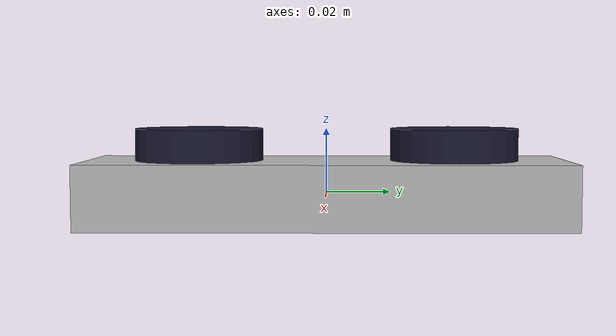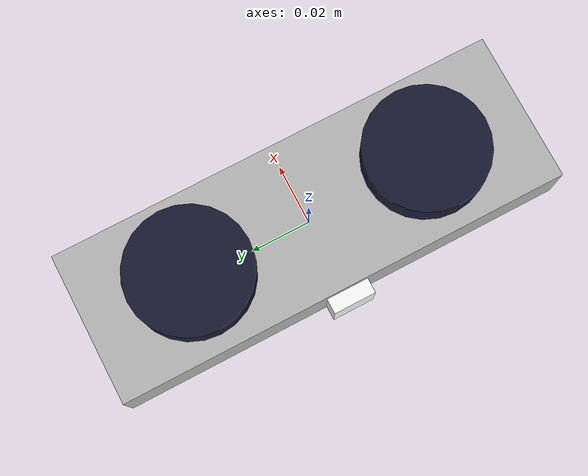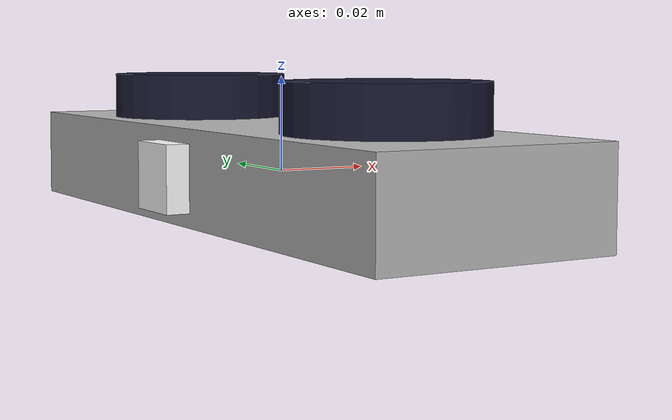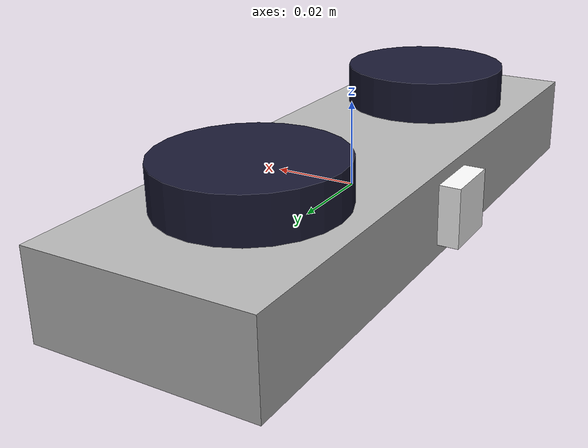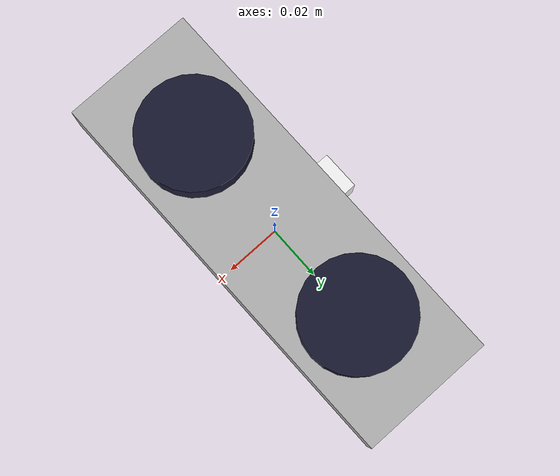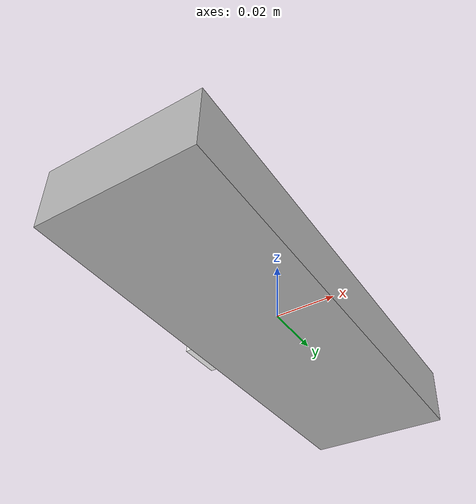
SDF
<?xml version="1.0" ?>
    <sdf version="1.5">
        <model name="camera">

            <link name="Main">
                <pose>0 0 0 0 -1.570796327 0</pose>
                <inertial>
                    <mass>0.7</mass>
                    <inertia>
                        <ixx>0.7</ixx>
                        <iyy>0.7</iyy>
                        <izz>0.7</izz>
                    </inertia>
                </inertial>
                <collision name="collision">
                <geometry>
                    <box>
                    <size>0.02 0.15 0.05</size>
                    </box>
                </geometry>
                </collision>
                <visual name="visual">
                <geometry>
                    <box>
                    <size>0.02 0.15 0.05</size>
                    </box>
                </geometry>
                </visual>

                <sensor name="camera_left" type="camera">
                <topic>cam_left</topic>
                <pose>0 0.04 0 0 0 0</pose>
                <camera>
                    <box_type>full_2d</box_type>
                    <horizontal_fov>1.047</horizontal_fov>
                    <image>
                    <width>800</width>
                    <height>600</height>
                    </image>
                    <clip>
                    <near>0.1</near>
                    <far>10</far>
                    </clip>
                    <save enabled="true">
                    <path>../tmp_files/camera_left</path>
                    </save>
                    <noise>
                    <type>gaussian</type>
                    <mean>0.00</mean>
                    <stddev>0.0</stddev>
                    </noise>
                    <distortion>
                    <k1>1</k1>
                    <k2>10</k2>
                    <k3>5</k3>
                    <p1>10</p1>
                    <p2>10</p2>
                    <center>0.5 0.5</center>
                    </distortion>
                    <lens>
                    <type>stereographic</type>
                    <scale_to_hfov>true</scale_to_hfov>
                    <cutoff_angle>1.5707963267948966</cutoff_angle>
                    <env_texture_size>256</env_texture_size>
                    </lens>
                </camera>
                <always_on>1</always_on>
                <update_rate>24</update_rate>
                <visualize>true</visualize>

                <plugin
                    filename="gz-sim-camera-video-recorder-system"
                    name="gz::sim::systems::CameraVideoRecorder">
                    <service>cam_basic</service>
                    <use_sim_time>true</use_sim_time>
                    <fps>24</fps>
                </plugin>

                </sensor>

                <sensor name="camera_right" type="camera">
                <topic>cam_right</topic>
                <pose>0 -0.04 0 0 0 0</pose>
                <camera>
                    <box_type>full_2d</box_type>
                    <horizontal_fov>1.047</horizontal_fov>
                    <image>
                    <width>800</width>
                    <height>600</height>
                    </image>
                    <clip>
                    <near>0.1</near>
                    <far>10</far>
                    </clip>
                    <save enabled="true">
                    <path>../tmp_files/stereo_cam_right</path>
                    </save>
                    <noise>
                    <type>gaussian</type>
                    <mean>0.00</mean>
                    <stddev>0.0</stddev>
                    </noise>
                    <distortion>
                    <k1>1</k1>
                    <k2>10</k2>
                    <k3>5</k3>
                    <p1>10</p1>
                    <p2>10</p2>
                    <center>0.5 0.5</center>
                    </distortion>
                    <lens>
                    <type>stereographic</type>
                    <scale_to_hfov>true</scale_to_hfov>
                    <cutoff_angle>1.5707963267948966</cutoff_angle>
                    <env_texture_size>256</env_texture_size>
                    </lens>
                </camera>
                <always_on>1</always_on>
                <update_rate>24</update_rate>
                <visualize>true</visualize>

                <plugin
                    filename="gz-sim-camera-video-recorder-system"
                    name="gz::sim::systems::CameraVideoRecorder">
                    <service>cam_basic</service>
                    <use_sim_time>true</use_sim_time>
                    <fps>24</fps>
                </plugin>

                </sensor>

            </link>

            <link name="Left_Lens">

                <!-- Vertically offset the top cylinder by the length of the bottom
                    cylinder and half the length of this cylinder. -->
                <pose>0 0.04 0.015 0 0 0</pose>

                <inertial>
                    <mass>0.1</mass>
                    <pose>0 -0.04 -0.015 0 0 0</pose>
                    <inertia>
                        <ixx>0.1</ixx>
                        <iyy>0.1</iyy>
                        <izz>0.1</izz>
                    </inertia>
                </inertial>

                <collision name="top_collision">
                <geometry>
                    <cylinder>
                    <!-- Radius and length provided by Velodyne -->
                    <radius>0.02</radius>
                    <length>0.01</length>
                    </cylinder>
                </geometry>
                </collision>

                <!-- The visual is mostly a copy of the collision -->
                <visual name="top_visual">
                <geometry>
                    <cylinder>
                    <radius>0.02</radius>
                    <length>0.01</length>
                    </cylinder>
                </geometry>

                <material> <!-- Wheel material -->
                    <ambient>0.1 0.1 0.1 1</ambient>
                    <diffuse>0.1 0.1 0.2 1</diffuse>
                    <specular>0 0 0 0</specular>
                    <emissive>0 0 0 1</emissive>
                </material> <!-- End wheel material -->

                </visual>

            </link>

            <link name="Right_Lens">

                <!-- Vertically offset the top cylinder by the length of the bottom
                    cylinder and half the length of this cylinder. -->
                <pose>0 -0.04 0.015 0 0 0</pose>

                <inertial>
                    <mass>0.1</mass>
                    <pose>0 0.04 -0.015 0 0 0</pose>
                    <inertia>
                        <ixx>0.1</ixx>
                        <iyy>0.1</iyy>
                        <izz>0.1</izz>
                    </inertia>
                </inertial>

                <collision name="top_collision">
                <geometry>
                    <cylinder>
                    <!-- Radius and length provided by Velodyne -->
                    <radius>0.02</radius>
                    <length>0.01</length>
                    </cylinder>
                </geometry>
                </collision>

                <!-- The visual is mostly a copy of the collision -->
                <visual name="top_visual">
                <geometry>
                    <cylinder>
                    <radius>0.02</radius>
                    <length>0.01</length>
                    </cylinder>
                </geometry>

                <material> <!-- Wheel material -->
                    <ambient>0.1 0.1 0.1 1</ambient>
                    <diffuse>0.1 0.1 0.2 1</diffuse>
                    <specular>0 0 0 0</specular>
                    <emissive>0 0 0 1</emissive>
                </material> <!-- End wheel material -->

                </visual>

            </link>

        <link name="Btn">

                <!-- Vertically offset the top cylinder by the length of the bottom
                    cylinder and half the length of this cylinder. -->
                <pose>-0.0275 0 0 0 0 0</pose>

                <inertial>
                    <mass>0.1</mass>
                    <pose>0.0275 0 0 0 0 0</pose>
                    <inertia>
                        <ixx>0.1</ixx>
                        <iyy>0.1</iyy>
                        <izz>0.1</izz>
                    </inertia>
                </inertial>

                <collision name="top_collision">
                <geometry>
                    <box>
                    <size>0.005 0.014 0.014</size>
                    </box>
                </geometry>
                </collision>

                <!-- The visual is mostly a copy of the collision -->
                <visual name="top_visual">
                <geometry>
                    <box>
                    <size>0.005 0.014 0.014</size>
                    </box>
                </geometry>

                <material> <!-- Wheel material -->
                    <ambient>0.1 0.1 0.1 1</ambient>
                    <diffuse>1 1 1 1</diffuse>
                    <specular>0 0 0 0</specular>
                    <emissive>0 0 0 1</emissive>
                </material> <!-- End wheel material -->

                </visual>

            </link>

            <joint type="fixed" name="lens_left">
                <pose>0 0.04 0.015 0 0 0</pose>
                <parent>Main</parent>
                <child>Left_Lens</child>
            </joint>

            <joint type="fixed" name="lens_right">
                <pose>0 -0.04 0.015 0 0 0</pose>
                <parent>Main</parent>
                <child>Right_Lens</child>
            </joint>

            <joint type="fixed" name="btn">
                <pose>-0.0275 0 0 0 0 0</pose>
                <parent>Main</parent>
                <child>Btn</child>
            </joint>

            <plugin
                filename="Position_Control"
                name="gz::sim::v7::systems::PositionController">
                <timestep_precision>10</timestep_precision>
                <xyz_offset> 0 0 0</xyz_offset>
                <rpy_offset> 0 0 0</rpy_offset>
            </plugin>

            <plugin
                filename="Pose_To_File"
                name="gz::sim::v7::systems::PoseToFile">
            </plugin>
        </model>
    </sdf>
